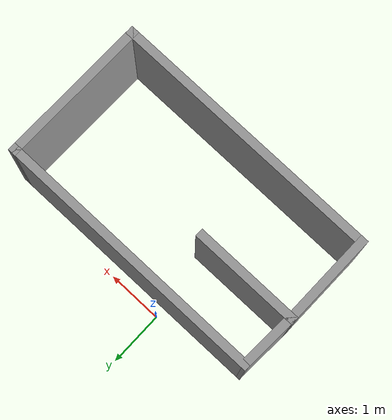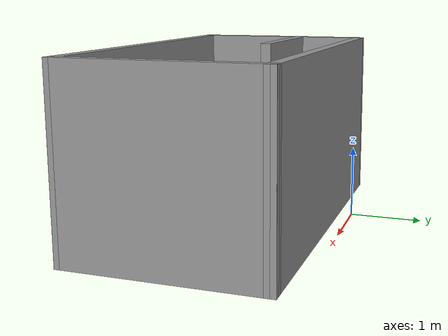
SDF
<?xml version='1.0'?>
<sdf version='1.6'>
  <model name='closed_room1.world'>
    <pose frame=''>0.744102 -1.55903 0 0 -0 0</pose>
    <link name='Wall_0'>
      <collision name='Wall_0_Collision'>
        <geometry>
          <box>
            <size>2 0.15 2.5</size>
          </box>
        </geometry>
        <pose frame=''>0 0 1.25 0 -0 0</pose>
      </collision>
      <visual name='Wall_0_Visual'>
        <pose frame=''>0 0 1.25 0 -0 0</pose>
        <geometry>
          <box>
            <size>2 0.15 2.5</size>
          </box>
        </geometry>
        <material>
          <script>
            <uri>file://media/materials/scripts/gazebo.material</uri>
            <name>Gazebo/Grey</name>
          </script>
          <ambient>1 1 1 1</ambient>
        </material>
        <meta>
          <layer>0</layer>
        </meta>
      </visual>
      <pose frame=''>-1.5191 0.299027 0 0 -0 3.14159</pose>
    </link>
    <link name='Wall_1'>
      <collision name='Wall_1_Collision'>
        <geometry>
          <box>
            <size>1.75 0.15 2.5</size>
          </box>
        </geometry>
        <pose frame=''>0 0 1.25 0 -0 0</pose>
      </collision>
      <visual name='Wall_1_Visual'>
        <pose frame=''>0 0 1.25 0 -0 0</pose>
        <geometry>
          <box>
            <size>1.75 0.15 2.5</size>
          </box>
        </geometry>
        <material>
          <script>
            <uri>file://media/materials/scripts/gazebo.material</uri>
            <name>Gazebo/Grey</name>
          </script>
          <ambient>1 1 1 1</ambient>
        </material>
        <meta>
          <layer>0</layer>
        </meta>
      </visual>
      <pose frame=''>-2.4441 -0.500973 0 0 -0 -1.5708</pose>
    </link>
    <link name='Wall_10'>
      <collision name='Wall_10_Collision'>
        <geometry>
          <box>
            <size>1.1508 0.15 2.5</size>
          </box>
        </geometry>
        <pose frame=''>0 0 1.25 0 -0 0</pose>
      </collision>
      <visual name='Wall_10_Visual'>
        <pose frame=''>0 0 1.25 0 -0 0</pose>
        <geometry>
          <box>
            <size>1.1508 0.15 2.5</size>
          </box>
        </geometry>
        <material>
          <script>
            <uri>file://media/materials/scripts/gazebo.material</uri>
            <name>Gazebo/Grey</name>
          </script>
          <ambient>1 1 1 1</ambient>
        </material>
        <meta>
          <layer>0</layer>
        </meta>
      </visual>
      <pose frame=''>-2.4241 0.799027 0 0 -0 -1.61078</pose>
    </link>
    <link name='Wall_11'>
      <collision name='Wall_11_Collision'>
        <geometry>
          <box>
            <size>0.15 0.15 2.5</size>
          </box>
        </geometry>
        <pose frame=''>0 0 1.25 0 -0 0</pose>
      </collision>
      <visual name='Wall_11_Visual'>
        <pose frame=''>0 0 1.25 0 -0 0</pose>
        <geometry>
          <box>
            <size>0.15 0.15 2.5</size>
          </box>
        </geometry>
        <material>
          <script>
            <uri>file://media/materials/scripts/gazebo.material</uri>
            <name>Gazebo/Grey</name>
          </script>
          <ambient>1 1 1 1</ambient>
        </material>
        <meta>
          <layer>0</layer>
        </meta>
      </visual>
      <pose frame=''>-2.4441 0.299027 0 0 -0 0</pose>
    </link>
    <link name='Wall_2'>
      <collision name='Wall_2_Collision'>
        <geometry>
          <box>
            <size>5 0.15 2.5</size>
          </box>
        </geometry>
        <pose frame=''>0 0 1.25 0 -0 0</pose>
      </collision>
      <visual name='Wall_2_Visual'>
        <pose frame=''>0 0 1.25 0 -0 0</pose>
        <geometry>
          <box>
            <size>5 0.15 2.5</size>
          </box>
        </geometry>
        <material>
          <script>
            <uri>file://media/materials/scripts/gazebo.material</uri>
            <name>Gazebo/Grey</name>
          </script>
          <ambient>1 1 1 1</ambient>
        </material>
        <meta>
          <layer>0</layer>
        </meta>
      </visual>
      <pose frame=''>-0.019102 -1.30097 0 0 -0 0</pose>
    </link>
    <link name='Wall_3'>
      <collision name='Wall_3_Collision'>
        <geometry>
          <box>
            <size>2.75 0.15 2.5</size>
          </box>
        </geometry>
        <pose frame=''>0 0 1.25 0 -0 0</pose>
      </collision>
      <visual name='Wall_3_Visual'>
        <pose frame=''>0 0 1.25 0 -0 0</pose>
        <geometry>
          <box>
            <size>2.75 0.15 2.5</size>
          </box>
        </geometry>
        <material>
          <script>
            <uri>file://media/materials/scripts/gazebo.material</uri>
            <name>Gazebo/Grey</name>
          </script>
          <ambient>1 1 1 1</ambient>
        </material>
        <meta>
          <layer>0</layer>
        </meta>
      </visual>
      <pose frame=''>2.4259 -0.000973 0 0 -0 1.55541</pose>
    </link>
    <link name='Wall_4'>
      <collision name='Wall_4_Collision'>
        <geometry>
          <box>
            <size>0.15 0.15 2.5</size>
          </box>
        </geometry>
        <pose frame=''>0 0 1.25 0 -0 0</pose>
      </collision>
      <visual name='Wall_4_Visual'>
        <pose frame=''>0 0 1.25 0 -0 0</pose>
        <geometry>
          <box>
            <size>0.15 0.15 2.5</size>
          </box>
        </geometry>
        <material>
          <script>
            <uri>file://media/materials/scripts/gazebo.material</uri>
            <name>Gazebo/Grey</name>
          </script>
          <ambient>1 1 1 1</ambient>
        </material>
        <meta>
          <layer>0</layer>
        </meta>
      </visual>
      <pose frame=''>2.4459 1.29903 0 0 -0 0</pose>
    </link>
    <link name='Wall_7'>
      <collision name='Wall_7_Collision'>
        <geometry>
          <box>
            <size>0.15 0.15 2.5</size>
          </box>
        </geometry>
        <pose frame=''>0 0 1.25 0 -0 0</pose>
      </collision>
      <visual name='Wall_7_Visual'>
        <pose frame=''>0 0 1.25 0 -0 0</pose>
        <geometry>
          <box>
            <size>0.15 0.15 2.5</size>
          </box>
        </geometry>
        <material>
          <script>
            <uri>file://media/materials/scripts/gazebo.material</uri>
            <name>Gazebo/Grey</name>
          </script>
          <ambient>1 1 1 1</ambient>
        </material>
        <meta>
          <layer>0</layer>
        </meta>
      </visual>
      <pose frame=''>2.4459 1.29903 0 0 -0 0</pose>
    </link>
    <link name='Wall_9'>
      <collision name='Wall_9_Collision'>
        <geometry>
          <box>
            <size>5 0.15 2.5</size>
          </box>
        </geometry>
        <pose frame=''>0 0 1.25 0 -0 0</pose>
      </collision>
      <visual name='Wall_9_Visual'>
        <pose frame=''>0 0 1.25 0 -0 0</pose>
        <geometry>
          <box>
            <size>5 0.15 2.5</size>
          </box>
        </geometry>
        <material>
          <script>
            <uri>file://media/materials/scripts/gazebo.material</uri>
            <name>Gazebo/Grey</name>
          </script>
          <ambient>1 1 1 1</ambient>
        </material>
        <meta>
          <layer>0</layer>
        </meta>
      </visual>
      <pose frame=''>0.020898 1.29903 0 0 -0 3.14159</pose>
    </link>
    <static>1</static>
  </model>
</sdf>
